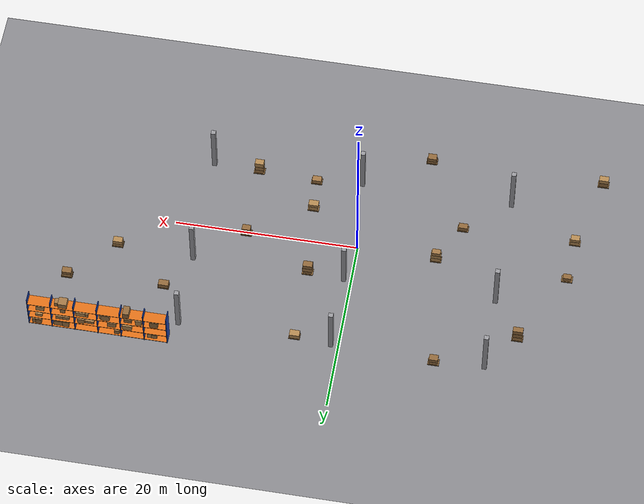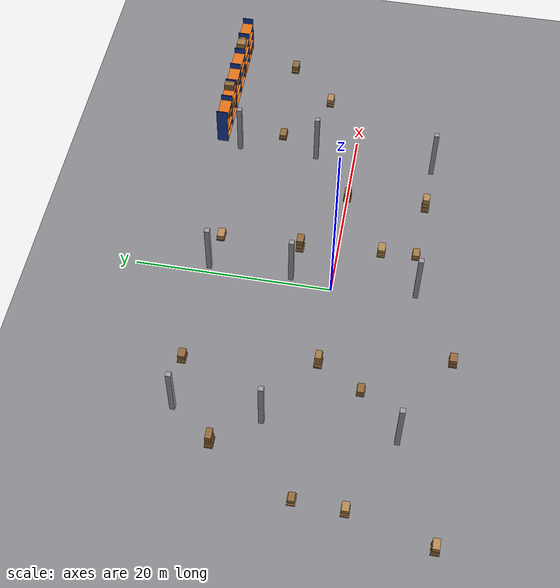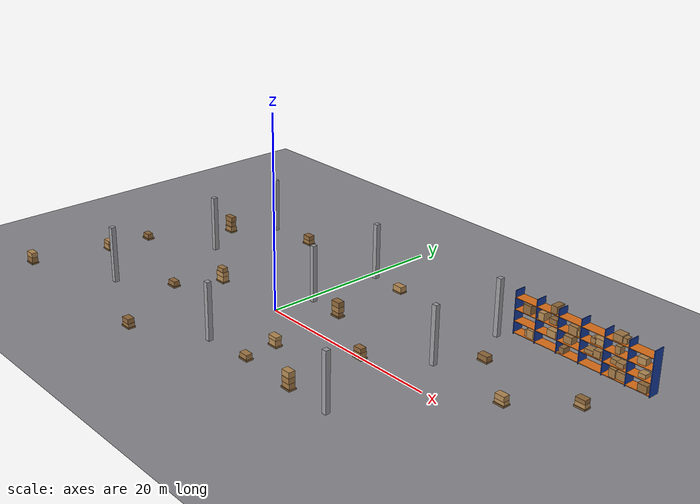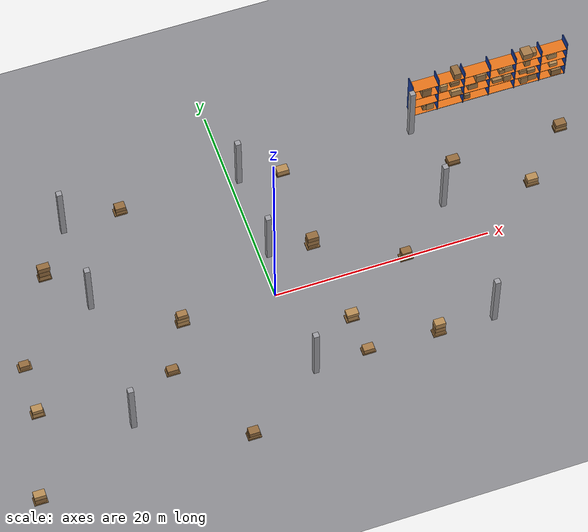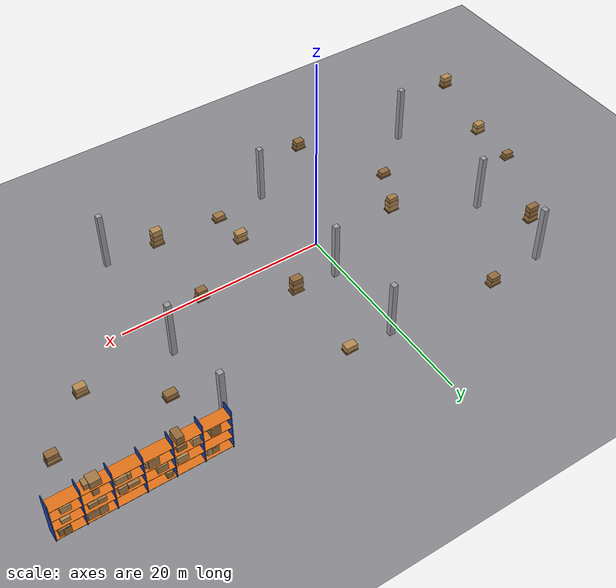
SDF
<sdf version="1.9">
 <world name="warehouse">
  <model name="ground_plane">
   <static>true</static>
   <link name="link">
    <collision name="collision">
     <geometry><plane><normal>0 0 1</normal><size>1 1</size></plane></geometry>
    </collision>
    <visual name="visual">
     <geometry><plane><normal>0 0 1</normal><size>200 100</size></plane></geometry>
     <material>
      <ambient>0.55 0.55 0.57 1</ambient>
      <diffuse>0.55 0.55 0.57 1</diffuse>
      <specular>0.1 0.1 0.1 1</specular>
     </material>
    </visual>
   </link>
  </model>
  <model name="rack31">
   <static>true</static>
   <link name="link">
    <collision name="up0_c">
     <pose>18.000 14.700 2.250 0 0 0</pose>
     <geometry><box><size>0.080 1.200 4.500</size></box></geometry>
    </collision>
    <visual name="up0_v">
     <pose>18.000 14.700 2.250 0 0 0</pose>
     <geometry><box><size>0.080 1.200 4.500</size></box></geometry>
     <material>
      <ambient>0.1 0.25 0.65 1</ambient>
      <diffuse>0.1 0.25 0.65 1</diffuse>
      <specular>0.1 0.1 0.1 1</specular>
     </material>
    </visual>
    <collision name="up1_c">
     <pose>20.500 14.700 2.250 0 0 0</pose>
     <geometry><box><size>0.080 1.200 4.500</size></box></geometry>
    </collision>
    <visual name="up1_v">
     <pose>20.500 14.700 2.250 0 0 0</pose>
     <geometry><box><size>0.080 1.200 4.500</size></box></geometry>
     <material>
      <ambient>0.1 0.25 0.65 1</ambient>
      <diffuse>0.1 0.25 0.65 1</diffuse>
      <specular>0.1 0.1 0.1 1</specular>
     </material>
    </visual>
    <collision name="up2_c">
     <pose>23.000 14.700 2.250 0 0 0</pose>
     <geometry><box><size>0.080 1.200 4.500</size></box></geometry>
    </collision>
    <visual name="up2_v">
     <pose>23.000 14.700 2.250 0 0 0</pose>
     <geometry><box><size>0.080 1.200 4.500</size></box></geometry>
     <material>
      <ambient>0.1 0.25 0.65 1</ambient>
      <diffuse>0.1 0.25 0.65 1</diffuse>
      <specular>0.1 0.1 0.1 1</specular>
     </material>
    </visual>
    <collision name="up3_c">
     <pose>25.500 14.700 2.250 0 0 0</pose>
     <geometry><box><size>0.080 1.200 4.500</size></box></geometry>
    </collision>
    <visual name="up3_v">
     <pose>25.500 14.700 2.250 0 0 0</pose>
     <geometry><box><size>0.080 1.200 4.500</size></box></geometry>
     <material>
      <ambient>0.1 0.25 0.65 1</ambient>
      <diffuse>0.1 0.25 0.65 1</diffuse>
      <specular>0.1 0.1 0.1 1</specular>
     </material>
    </visual>
    <collision name="up4_c">
     <pose>28.000 14.700 2.250 0 0 0</pose>
     <geometry><box><size>0.080 1.200 4.500</size></box></geometry>
    </collision>
    <visual name="up4_v">
     <pose>28.000 14.700 2.250 0 0 0</pose>
     <geometry><box><size>0.080 1.200 4.500</size></box></geometry>
     <material>
      <ambient>0.1 0.25 0.65 1</ambient>
      <diffuse>0.1 0.25 0.65 1</diffuse>
      <specular>0.1 0.1 0.1 1</specular>
     </material>
    </visual>
    <collision name="up5_c">
     <pose>30.500 14.700 2.250 0 0 0</pose>
     <geometry><box><size>0.080 1.200 4.500</size></box></geometry>
    </collision>
    <visual name="up5_v">
     <pose>30.500 14.700 2.250 0 0 0</pose>
     <geometry><box><size>0.080 1.200 4.500</size></box></geometry>
     <material>
      <ambient>0.1 0.25 0.65 1</ambient>
      <diffuse>0.1 0.25 0.65 1</diffuse>
      <specular>0.1 0.1 0.1 1</specular>
     </material>
    </visual>
    <collision name="up6_c">
     <pose>33.000 14.700 2.250 0 0 0</pose>
     <geometry><box><size>0.080 1.200 4.500</size></box></geometry>
    </collision>
    <visual name="up6_v">
     <pose>33.000 14.700 2.250 0 0 0</pose>
     <geometry><box><size>0.080 1.200 4.500</size></box></geometry>
     <material>
      <ambient>0.1 0.25 0.65 1</ambient>
      <diffuse>0.1 0.25 0.65 1</diffuse>
      <specular>0.1 0.1 0.1 1</specular>
     </material>
    </visual>
    <collision name="sh0_c">
     <pose>25.500 14.700 0.150 0 0 0</pose>
     <geometry><box><size>15.000 1.200 0.050</size></box></geometry>
    </collision>
    <visual name="sh0_v">
     <pose>25.500 14.700 0.150 0 0 0</pose>
     <geometry><box><size>15.000 1.200 0.050</size></box></geometry>
     <material>
      <ambient>0.9 0.45 0.1 1</ambient>
      <diffuse>0.9 0.45 0.1 1</diffuse>
      <specular>0.1 0.1 0.1 1</specular>
     </material>
    </visual>
    <collision name="sh1_c">
     <pose>25.500 14.700 1.350 0 0 0</pose>
     <geometry><box><size>15.000 1.200 0.050</size></box></geometry>
    </collision>
    <visual name="sh1_v">
     <pose>25.500 14.700 1.350 0 0 0</pose>
     <geometry><box><size>15.000 1.200 0.050</size></box></geometry>
     <material>
      <ambient>0.9 0.45 0.1 1</ambient>
      <diffuse>0.9 0.45 0.1 1</diffuse>
      <specular>0.1 0.1 0.1 1</specular>
     </material>
    </visual>
    <collision name="sh2_c">
     <pose>25.500 14.700 2.550 0 0 0</pose>
     <geometry><box><size>15.000 1.200 0.050</size></box></geometry>
    </collision>
    <visual name="sh2_v">
     <pose>25.500 14.700 2.550 0 0 0</pose>
     <geometry><box><size>15.000 1.200 0.050</size></box></geometry>
     <material>
      <ambient>0.9 0.45 0.1 1</ambient>
      <diffuse>0.9 0.45 0.1 1</diffuse>
      <specular>0.1 0.1 0.1 1</specular>
     </material>
    </visual>
    <collision name="sh3_c">
     <pose>25.500 14.700 3.750 0 0 0</pose>
     <geometry><box><size>15.000 1.200 0.050</size></box></geometry>
    </collision>
    <visual name="sh3_v">
     <pose>25.500 14.700 3.750 0 0 0</pose>
     <geometry><box><size>15.000 1.200 0.050</size></box></geometry>
     <material>
      <ambient>0.9 0.45 0.1 1</ambient>
      <diffuse>0.9 0.45 0.1 1</diffuse>
      <specular>0.1 0.1 0.1 1</specular>
     </material>
    </visual>
    <collision name="c0_c">
     <pose>19.825 14.655 0.602 0 0 0</pose>
     <geometry><box><size>0.725 0.772 0.853</size></box></geometry>
    </collision>
    <visual name="c0_v">
     <pose>19.825 14.655 0.602 0 0 0</pose>
     <geometry><box><size>0.725 0.772 0.853</size></box></geometry>
     <material>
      <ambient>0.72 0.55 0.33 1</ambient>
      <diffuse>0.72 0.55 0.33 1</diffuse>
      <specular>0.1 0.1 0.1 1</specular>
     </material>
    </visual>
    <collision name="c1_c">
     <pose>19.457 14.705 0.495 0 0 0</pose>
     <geometry><box><size>0.598 0.715 0.640</size></box></geometry>
    </collision>
    <visual name="c1_v">
     <pose>19.457 14.705 0.495 0 0 0</pose>
     <geometry><box><size>0.598 0.715 0.640</size></box></geometry>
     <material>
      <ambient>0.65 0.48 0.28 1</ambient>
      <diffuse>0.65 0.48 0.28 1</diffuse>
      <specular>0.1 0.1 0.1 1</specular>
     </material>
    </visual>
    <collision name="c2_c">
     <pose>19.378 14.694 3.024 0 0 0</pose>
     <geometry><box><size>0.868 1.087 0.899</size></box></geometry>
    </collision>
    <visual name="c2_v">
     <pose>19.378 14.694 3.024 0 0 0</pose>
     <geometry><box><size>0.868 1.087 0.899</size></box></geometry>
     <material>
      <ambient>0.58 0.42 0.24 1</ambient>
      <diffuse>0.58 0.42 0.24 1</diffuse>
      <specular>0.1 0.1 0.1 1</specular>
     </material>
    </visual>
    <collision name="c3_c">
     <pose>22.332 14.729 1.635 0 0 0</pose>
     <geometry><box><size>0.843 0.869 0.519</size></box></geometry>
    </collision>
    <visual name="c3_v">
     <pose>22.332 14.729 1.635 0 0 0</pose>
     <geometry><box><size>0.843 0.869 0.519</size></box></geometry>
     <material>
      <ambient>0.72 0.55 0.33 1</ambient>
      <diffuse>0.72 0.55 0.33 1</diffuse>
      <specular>0.1 0.1 0.1 1</specular>
     </material>
    </visual>
    <collision name="c4_c">
     <pose>22.305 14.676 1.718 0 0 0</pose>
     <geometry><box><size>0.984 1.085 0.686</size></box></geometry>
    </collision>
    <visual name="c4_v">
     <pose>22.305 14.676 1.718 0 0 0</pose>
     <geometry><box><size>0.984 1.085 0.686</size></box></geometry>
     <material>
      <ambient>0.72 0.55 0.33 1</ambient>
      <diffuse>0.72 0.55 0.33 1</diffuse>
      <specular>0.1 0.1 0.1 1</specular>
     </material>
    </visual>
    <collision name="c5_c">
     <pose>22.212 14.713 2.831 0 0 0</pose>
     <geometry><box><size>0.840 0.690 0.511</size></box></geometry>
    </collision>
    <visual name="c5_v">
     <pose>22.212 14.713 2.831 0 0 0</pose>
     <geometry><box><size>0.840 0.690 0.511</size></box></geometry>
     <material>
      <ambient>0.58 0.42 0.24 1</ambient>
      <diffuse>0.58 0.42 0.24 1</diffuse>
      <specular>0.1 0.1 0.1 1</specular>
     </material>
    </visual>
    <collision name="c6_c">
     <pose>21.035 14.676 2.964 0 0 0</pose>
     <geometry><box><size>0.652 1.081 0.778</size></box></geometry>
    </collision>
    <visual name="c6_v">
     <pose>21.035 14.676 2.964 0 0 0</pose>
     <geometry><box><size>0.652 1.081 0.778</size></box></geometry>
     <material>
      <ambient>0.72 0.55 0.33 1</ambient>
      <diffuse>0.72 0.55 0.33 1</diffuse>
      <specular>0.1 0.1 0.1 1</specular>
     </material>
    </visual>
    <collision name="c7_c">
     <pose>22.346 14.735 4.152 0 0 0</pose>
     <geometry><box><size>0.676 1.062 0.753</size></box></geometry>
    </collision>
    <visual name="c7_v">
     <pose>22.346 14.735 4.152 0 0 0</pose>
     <geometry><box><size>0.676 1.062 0.753</size></box></geometry>
     <material>
      <ambient>0.58 0.42 0.24 1</ambient>
      <diffuse>0.58 0.42 0.24 1</diffuse>
      <specular>0.1 0.1 0.1 1</specular>
     </material>
    </visual>
    <collision name="c8_c">
     <pose>23.482 14.710 0.460 0 0 0</pose>
     <geometry><box><size>0.530 0.891 0.570</size></box></geometry>
    </collision>
    <visual name="c8_v">
     <pose>23.482 14.710 0.460 0 0 0</pose>
     <geometry><box><size>0.530 0.891 0.570</size></box></geometry>
     <material>
      <ambient>0.58 0.42 0.24 1</ambient>
      <diffuse>0.58 0.42 0.24 1</diffuse>
      <specular>0.1 0.1 0.1 1</specular>
     </material>
    </visual>
    <collision name="c9_c">
     <pose>23.991 14.744 1.728 0 0 0</pose>
     <geometry><box><size>0.909 0.817 0.706</size></box></geometry>
    </collision>
    <visual name="c9_v">
     <pose>23.991 14.744 1.728 0 0 0</pose>
     <geometry><box><size>0.909 0.817 0.706</size></box></geometry>
     <material>
      <ambient>0.65 0.48 0.28 1</ambient>
      <diffuse>0.65 0.48 0.28 1</diffuse>
      <specular>0.1 0.1 0.1 1</specular>
     </material>
    </visual>
    <collision name="c10_c">
     <pose>24.620 14.655 2.996 0 0 0</pose>
     <geometry><box><size>0.900 1.082 0.842</size></box></geometry>
    </collision>
    <visual name="c10_v">
     <pose>24.620 14.655 2.996 0 0 0</pose>
     <geometry><box><size>0.900 1.082 0.842</size></box></geometry>
     <material>
      <ambient>0.65 0.48 0.28 1</ambient>
      <diffuse>0.65 0.48 0.28 1</diffuse>
      <specular>0.1 0.1 0.1 1</specular>
     </material>
    </visual>
    <collision name="c11_c">
     <pose>24.902 14.666 2.884 0 0 0</pose>
     <geometry><box><size>0.732 0.781 0.619</size></box></geometry>
    </collision>
    <visual name="c11_v">
     <pose>24.902 14.666 2.884 0 0 0</pose>
     <geometry><box><size>0.732 0.781 0.619</size></box></geometry>
     <material>
      <ambient>0.72 0.55 0.33 1</ambient>
      <diffuse>0.72 0.55 0.33 1</diffuse>
      <specular>0.1 0.1 0.1 1</specular>
     </material>
    </visual>
    <collision name="c12_c">
     <pose>27.309 14.702 1.725 0 0 0</pose>
     <geometry><box><size>0.725 1.022 0.700</size></box></geometry>
    </collision>
    <visual name="c12_v">
     <pose>27.309 14.702 1.725 0 0 0</pose>
     <geometry><box><size>0.725 1.022 0.700</size></box></geometry>
     <material>
      <ambient>0.65 0.48 0.28 1</ambient>
      <diffuse>0.65 0.48 0.28 1</diffuse>
      <specular>0.1 0.1 0.1 1</specular>
     </material>
    </visual>
    <collision name="c13_c">
     <pose>26.391 14.690 1.576 0 0 0</pose>
     <geometry><box><size>0.947 0.845 0.402</size></box></geometry>
    </collision>
    <visual name="c13_v">
     <pose>26.391 14.690 1.576 0 0 0</pose>
     <geometry><box><size>0.947 0.845 0.402</size></box></geometry>
     <material>
      <ambient>0.65 0.48 0.28 1</ambient>
      <diffuse>0.65 0.48 0.28 1</diffuse>
      <specular>0.1 0.1 0.1 1</specular>
     </material>
    </visual>
    <collision name="c14_c">
     <pose>26.744 14.690 2.833 0 0 0</pose>
     <geometry><box><size>0.511 0.857 0.516</size></box></geometry>
    </collision>
    <visual name="c14_v">
     <pose>26.744 14.690 2.833 0 0 0</pose>
     <geometry><box><size>0.511 0.857 0.516</size></box></geometry>
     <material>
      <ambient>0.65 0.48 0.28 1</ambient>
      <diffuse>0.65 0.48 0.28 1</diffuse>
      <specular>0.1 0.1 0.1 1</specular>
     </material>
    </visual>
    <collision name="c15_c">
     <pose>27.297 14.719 2.882 0 0 0</pose>
     <geometry><box><size>1.005 0.804 0.614</size></box></geometry>
    </collision>
    <visual name="c15_v">
     <pose>27.297 14.719 2.882 0 0 0</pose>
     <geometry><box><size>1.005 0.804 0.614</size></box></geometry>
     <material>
      <ambient>0.72 0.55 0.33 1</ambient>
      <diffuse>0.72 0.55 0.33 1</diffuse>
      <specular>0.1 0.1 0.1 1</specular>
     </material>
    </visual>
    <collision name="c16_c">
     <pose>29.045 14.686 0.596 0 0 0</pose>
     <geometry><box><size>0.688 0.986 0.843</size></box></geometry>
    </collision>
    <visual name="c16_v">
     <pose>29.045 14.686 0.596 0 0 0</pose>
     <geometry><box><size>0.688 0.986 0.843</size></box></geometry>
     <material>
      <ambient>0.65 0.48 0.28 1</ambient>
      <diffuse>0.65 0.48 0.28 1</diffuse>
      <specular>0.1 0.1 0.1 1</specular>
     </material>
    </visual>
    <collision name="c17_c">
     <pose>29.847 14.737 0.554 0 0 0</pose>
     <geometry><box><size>0.970 0.792 0.758</size></box></geometry>
    </collision>
    <visual name="c17_v">
     <pose>29.847 14.737 0.554 0 0 0</pose>
     <geometry><box><size>0.970 0.792 0.758</size></box></geometry>
     <material>
      <ambient>0.65 0.48 0.28 1</ambient>
      <diffuse>0.65 0.48 0.28 1</diffuse>
      <specular>0.1 0.1 0.1 1</specular>
     </material>
    </visual>
    <collision name="c18_c">
     <pose>28.958 14.746 1.609 0 0 0</pose>
     <geometry><box><size>0.700 0.640 0.469</size></box></geometry>
    </collision>
    <visual name="c18_v">
     <pose>28.958 14.746 1.609 0 0 0</pose>
     <geometry><box><size>0.700 0.640 0.469</size></box></geometry>
     <material>
      <ambient>0.65 0.48 0.28 1</ambient>
      <diffuse>0.65 0.48 0.28 1</diffuse>
      <specular>0.1 0.1 0.1 1</specular>
     </material>
    </visual>
    <collision name="c19_c">
     <pose>29.686 14.668 1.608 0 0 0</pose>
     <geometry><box><size>0.766 0.804 0.466</size></box></geometry>
    </collision>
    <visual name="c19_v">
     <pose>29.686 14.668 1.608 0 0 0</pose>
     <geometry><box><size>0.766 0.804 0.466</size></box></geometry>
     <material>
      <ambient>0.65 0.48 0.28 1</ambient>
      <diffuse>0.65 0.48 0.28 1</diffuse>
      <specular>0.1 0.1 0.1 1</specular>
     </material>
    </visual>
    <collision name="c20_c">
     <pose>29.273 14.671 2.940 0 0 0</pose>
     <geometry><box><size>0.519 0.670 0.730</size></box></geometry>
    </collision>
    <visual name="c20_v">
     <pose>29.273 14.671 2.940 0 0 0</pose>
     <geometry><box><size>0.519 0.670 0.730</size></box></geometry>
     <material>
      <ambient>0.65 0.48 0.28 1</ambient>
      <diffuse>0.65 0.48 0.28 1</diffuse>
      <specular>0.1 0.1 0.1 1</specular>
     </material>
    </visual>
    <collision name="c21_c">
     <pose>29.203 14.708 4.115 0 0 0</pose>
     <geometry><box><size>0.939 0.946 0.679</size></box></geometry>
    </collision>
    <visual name="c21_v">
     <pose>29.203 14.708 4.115 0 0 0</pose>
     <geometry><box><size>0.939 0.946 0.679</size></box></geometry>
     <material>
      <ambient>0.65 0.48 0.28 1</ambient>
      <diffuse>0.65 0.48 0.28 1</diffuse>
      <specular>0.1 0.1 0.1 1</specular>
     </material>
    </visual>
    <collision name="c22_c">
     <pose>29.659 14.674 4.050 0 0 0</pose>
     <geometry><box><size>0.839 0.653 0.550</size></box></geometry>
    </collision>
    <visual name="c22_v">
     <pose>29.659 14.674 4.050 0 0 0</pose>
     <geometry><box><size>0.839 0.653 0.550</size></box></geometry>
     <material>
      <ambient>0.65 0.48 0.28 1</ambient>
      <diffuse>0.65 0.48 0.28 1</diffuse>
      <specular>0.1 0.1 0.1 1</specular>
     </material>
    </visual>
    <collision name="c23_c">
     <pose>32.190 14.673 0.533 0 0 0</pose>
     <geometry><box><size>0.952 1.045 0.717</size></box></geometry>
    </collision>
    <visual name="c23_v">
     <pose>32.190 14.673 0.533 0 0 0</pose>
     <geometry><box><size>0.952 1.045 0.717</size></box></geometry>
     <material>
      <ambient>0.58 0.42 0.24 1</ambient>
      <diffuse>0.58 0.42 0.24 1</diffuse>
      <specular>0.1 0.1 0.1 1</specular>
     </material>
    </visual>
    <collision name="c24_c">
     <pose>31.988 14.719 0.522 0 0 0</pose>
     <geometry><box><size>0.624 1.037 0.694</size></box></geometry>
    </collision>
    <visual name="c24_v">
     <pose>31.988 14.719 0.522 0 0 0</pose>
     <geometry><box><size>0.624 1.037 0.694</size></box></geometry>
     <material>
      <ambient>0.58 0.42 0.24 1</ambient>
      <diffuse>0.58 0.42 0.24 1</diffuse>
      <specular>0.1 0.1 0.1 1</specular>
     </material>
    </visual>
    <collision name="c25_c">
     <pose>31.910 14.698 1.580 0 0 0</pose>
     <geometry><box><size>0.730 0.779 0.410</size></box></geometry>
    </collision>
    <visual name="c25_v">
     <pose>31.910 14.698 1.580 0 0 0</pose>
     <geometry><box><size>0.730 0.779 0.410</size></box></geometry>
     <material>
      <ambient>0.72 0.55 0.33 1</ambient>
      <diffuse>0.72 0.55 0.33 1</diffuse>
      <specular>0.1 0.1 0.1 1</specular>
     </material>
    </visual>
    <collision name="c26_c">
     <pose>31.705 14.725 2.902 0 0 0</pose>
     <geometry><box><size>0.866 0.742 0.653</size></box></geometry>
    </collision>
    <visual name="c26_v">
     <pose>31.705 14.725 2.902 0 0 0</pose>
     <geometry><box><size>0.866 0.742 0.653</size></box></geometry>
     <material>
      <ambient>0.72 0.55 0.33 1</ambient>
      <diffuse>0.72 0.55 0.33 1</diffuse>
      <specular>0.1 0.1 0.1 1</specular>
     </material>
    </visual>
   </link>
  </model>
  <model name="pallet0">
   <static>true</static>
   <link name="link">
    <collision name="pallet_c">
     <pose>12.207 0.020 0.075 0 0 0</pose>
     <geometry><box><size>1.200 0.800 0.150</size></box></geometry>
    </collision>
    <visual name="pallet_v">
     <pose>12.207 0.020 0.075 0 0 0</pose>
     <geometry><box><size>1.200 0.800 0.150</size></box></geometry>
     <material>
      <ambient>0.55 0.4 0.22 1</ambient>
      <diffuse>0.55 0.4 0.22 1</diffuse>
      <specular>0.1 0.1 0.1 1</specular>
     </material>
    </visual>
    <collision name="b0_c">
     <pose>12.207 0.020 0.431 0 0 0</pose>
     <geometry><box><size>0.926 0.740 0.562</size></box></geometry>
    </collision>
    <visual name="b0_v">
     <pose>12.207 0.020 0.431 0 0 0</pose>
     <geometry><box><size>0.926 0.740 0.562</size></box></geometry>
     <material>
      <ambient>0.65 0.48 0.28 1</ambient>
      <diffuse>0.65 0.48 0.28 1</diffuse>
      <specular>0.1 0.1 0.1 1</specular>
     </material>
    </visual>
    <collision name="b1_c">
     <pose>12.207 0.020 0.927 0 0 0</pose>
     <geometry><box><size>0.929 0.675 0.429</size></box></geometry>
    </collision>
    <visual name="b1_v">
     <pose>12.207 0.020 0.927 0 0 0</pose>
     <geometry><box><size>0.929 0.675 0.429</size></box></geometry>
     <material>
      <ambient>0.58 0.42 0.24 1</ambient>
      <diffuse>0.58 0.42 0.24 1</diffuse>
      <specular>0.1 0.1 0.1 1</specular>
     </material>
    </visual>
   </link>
  </model>
  <model name="pallet1">
   <static>true</static>
   <link name="link">
    <collision name="pallet_c">
     <pose>-22.923 0.165 0.075 0 0 0</pose>
     <geometry><box><size>1.200 0.800 0.150</size></box></geometry>
    </collision>
    <visual name="pallet_v">
     <pose>-22.923 0.165 0.075 0 0 0</pose>
     <geometry><box><size>1.200 0.800 0.150</size></box></geometry>
     <material>
      <ambient>0.55 0.4 0.22 1</ambient>
      <diffuse>0.55 0.4 0.22 1</diffuse>
      <specular>0.1 0.1 0.1 1</specular>
     </material>
    </visual>
    <collision name="b0_c">
     <pose>-22.923 0.165 0.402 0 0 0</pose>
     <geometry><box><size>0.900 0.610 0.504</size></box></geometry>
    </collision>
    <visual name="b0_v">
     <pose>-22.923 0.165 0.402 0 0 0</pose>
     <geometry><box><size>0.900 0.610 0.504</size></box></geometry>
     <material>
      <ambient>0.58 0.42 0.24 1</ambient>
      <diffuse>0.58 0.42 0.24 1</diffuse>
      <specular>0.1 0.1 0.1 1</specular>
     </material>
    </visual>
   </link>
  </model>
  <model name="pallet2">
   <static>true</static>
   <link name="link">
    <collision name="pallet_c">
     <pose>-8.615 -0.023 0.075 0 0 0</pose>
     <geometry><box><size>1.200 0.800 0.150</size></box></geometry>
    </collision>
    <visual name="pallet_v">
     <pose>-8.615 -0.023 0.075 0 0 0</pose>
     <geometry><box><size>1.200 0.800 0.150</size></box></geometry>
     <material>
      <ambient>0.55 0.4 0.22 1</ambient>
      <diffuse>0.55 0.4 0.22 1</diffuse>
      <specular>0.1 0.1 0.1 1</specular>
     </material>
    </visual>
    <collision name="b0_c">
     <pose>-8.615 -0.023 0.433 0 0 0</pose>
     <geometry><box><size>1.030 0.680 0.567</size></box></geometry>
    </collision>
    <visual name="b0_v">
     <pose>-8.615 -0.023 0.433 0 0 0</pose>
     <geometry><box><size>1.030 0.680 0.567</size></box></geometry>
     <material>
      <ambient>0.72 0.55 0.33 1</ambient>
      <diffuse>0.72 0.55 0.33 1</diffuse>
      <specular>0.1 0.1 0.1 1</specular>
     </material>
    </visual>
    <collision name="b1_c">
     <pose>-8.615 -0.023 0.948 0 0 0</pose>
     <geometry><box><size>1.083 0.701 0.464</size></box></geometry>
    </collision>
    <visual name="b1_v">
     <pose>-8.615 -0.023 0.948 0 0 0</pose>
     <geometry><box><size>1.083 0.701 0.464</size></box></geometry>
     <material>
      <ambient>0.72 0.55 0.33 1</ambient>
      <diffuse>0.72 0.55 0.33 1</diffuse>
      <specular>0.1 0.1 0.1 1</specular>
     </material>
    </visual>
    <collision name="b2_c">
     <pose>-8.615 -0.023 1.400 0 0 0</pose>
     <geometry><box><size>0.916 0.610 0.439</size></box></geometry>
    </collision>
    <visual name="b2_v">
     <pose>-8.615 -0.023 1.400 0 0 0</pose>
     <geometry><box><size>0.916 0.610 0.439</size></box></geometry>
     <material>
      <ambient>0.65 0.48 0.28 1</ambient>
      <diffuse>0.65 0.48 0.28 1</diffuse>
      <specular>0.1 0.1 0.1 1</specular>
     </material>
    </visual>
   </link>
  </model>
  <model name="pallet3">
   <static>true</static>
   <link name="link">
    <collision name="pallet_c">
     <pose>4.776 3.894 0.075 0 0 0</pose>
     <geometry><box><size>1.200 0.800 0.150</size></box></geometry>
    </collision>
    <visual name="pallet_v">
     <pose>4.776 3.894 0.075 0 0 0</pose>
     <geometry><box><size>1.200 0.800 0.150</size></box></geometry>
     <material>
      <ambient>0.55 0.4 0.22 1</ambient>
      <diffuse>0.55 0.4 0.22 1</diffuse>
      <specular>0.1 0.1 0.1 1</specular>
     </material>
    </visual>
    <collision name="b0_c">
     <pose>4.776 3.894 0.353 0 0 0</pose>
     <geometry><box><size>0.931 0.618 0.406</size></box></geometry>
    </collision>
    <visual name="b0_v">
     <pose>4.776 3.894 0.353 0 0 0</pose>
     <geometry><box><size>0.931 0.618 0.406</size></box></geometry>
     <material>
      <ambient>0.58 0.42 0.24 1</ambient>
      <diffuse>0.58 0.42 0.24 1</diffuse>
      <specular>0.1 0.1 0.1 1</specular>
     </material>
    </visual>
    <collision name="b1_c">
     <pose>4.776 3.894 0.838 0 0 0</pose>
     <geometry><box><size>1.082 0.674 0.564</size></box></geometry>
    </collision>
    <visual name="b1_v">
     <pose>4.776 3.894 0.838 0 0 0</pose>
     <geometry><box><size>1.082 0.674 0.564</size></box></geometry>
     <material>
      <ambient>0.65 0.48 0.28 1</ambient>
      <diffuse>0.65 0.48 0.28 1</diffuse>
      <specular>0.1 0.1 0.1 1</specular>
     </material>
    </visual>
    <collision name="b2_c">
     <pose>4.776 3.894 1.385 0 0 0</pose>
     <geometry><box><size>1.025 0.702 0.530</size></box></geometry>
    </collision>
    <visual name="b2_v">
     <pose>4.776 3.894 1.385 0 0 0</pose>
     <geometry><box><size>1.025 0.702 0.530</size></box></geometry>
     <material>
      <ambient>0.58 0.42 0.24 1</ambient>
      <diffuse>0.58 0.42 0.24 1</diffuse>
      <specular>0.1 0.1 0.1 1</specular>
     </material>
    </visual>
   </link>
  </model>
  <model name="pallet4">
   <static>true</static>
   <link name="link">
    <collision name="pallet_c">
     <pose>25.657 3.797 0.075 0 0 0</pose>
     <geometry><box><size>1.200 0.800 0.150</size></box></geometry>
    </collision>
    <visual name="pallet_v">
     <pose>25.657 3.797 0.075 0 0 0</pose>
     <geometry><box><size>1.200 0.800 0.150</size></box></geometry>
     <material>
      <ambient>0.55 0.4 0.22 1</ambient>
      <diffuse>0.55 0.4 0.22 1</diffuse>
      <specular>0.1 0.1 0.1 1</specular>
     </material>
    </visual>
    <collision name="b0_c">
     <pose>25.657 3.797 0.336 0 0 0</pose>
     <geometry><box><size>1.087 0.617 0.372</size></box></geometry>
    </collision>
    <visual name="b0_v">
     <pose>25.657 3.797 0.336 0 0 0</pose>
     <geometry><box><size>1.087 0.617 0.372</size></box></geometry>
     <material>
      <ambient>0.72 0.55 0.33 1</ambient>
      <diffuse>0.72 0.55 0.33 1</diffuse>
      <specular>0.1 0.1 0.1 1</specular>
     </material>
    </visual>
    <collision name="b1_c">
     <pose>25.657 3.797 0.764 0 0 0</pose>
     <geometry><box><size>1.015 0.687 0.484</size></box></geometry>
    </collision>
    <visual name="b1_v">
     <pose>25.657 3.797 0.764 0 0 0</pose>
     <geometry><box><size>1.015 0.687 0.484</size></box></geometry>
     <material>
      <ambient>0.72 0.55 0.33 1</ambient>
      <diffuse>0.72 0.55 0.33 1</diffuse>
      <specular>0.1 0.1 0.1 1</specular>
     </material>
    </visual>
   </link>
  </model>
  <model name="pallet5">
   <static>true</static>
   <link name="link">
    <collision name="pallet_c">
     <pose>5.544 -4.396 0.075 0 0 0</pose>
     <geometry><box><size>1.200 0.800 0.150</size></box></geometry>
    </collision>
    <visual name="pallet_v">
     <pose>5.544 -4.396 0.075 0 0 0</pose>
     <geometry><box><size>1.200 0.800 0.150</size></box></geometry>
     <material>
      <ambient>0.55 0.4 0.22 1</ambient>
      <diffuse>0.55 0.4 0.22 1</diffuse>
      <specular>0.1 0.1 0.1 1</specular>
     </material>
    </visual>
    <collision name="b0_c">
     <pose>5.544 -4.396 0.439 0 0 0</pose>
     <geometry><box><size>0.916 0.700 0.579</size></box></geometry>
    </collision>
    <visual name="b0_v">
     <pose>5.544 -4.396 0.439 0 0 0</pose>
     <geometry><box><size>0.916 0.700 0.579</size></box></geometry>
     <material>
      <ambient>0.72 0.55 0.33 1</ambient>
      <diffuse>0.72 0.55 0.33 1</diffuse>
      <specular>0.1 0.1 0.1 1</specular>
     </material>
    </visual>
    <collision name="b1_c">
     <pose>5.544 -4.396 0.908 0 0 0</pose>
     <geometry><box><size>1.074 0.707 0.358</size></box></geometry>
    </collision>
    <visual name="b1_v">
     <pose>5.544 -4.396 0.908 0 0 0</pose>
     <geometry><box><size>1.074 0.707 0.358</size></box></geometry>
     <material>
      <ambient>0.72 0.55 0.33 1</ambient>
      <diffuse>0.72 0.55 0.33 1</diffuse>
      <specular>0.1 0.1 0.1 1</specular>
     </material>
    </visual>
   </link>
  </model>
  <model name="pallet6">
   <static>true</static>
   <link name="link">
    <collision name="pallet_c">
     <pose>-10.946 -4.438 0.075 0 0 0</pose>
     <geometry><box><size>1.200 0.800 0.150</size></box></geometry>
    </collision>
    <visual name="pallet_v">
     <pose>-10.946 -4.438 0.075 0 0 0</pose>
     <geometry><box><size>1.200 0.800 0.150</size></box></geometry>
     <material>
      <ambient>0.55 0.4 0.22 1</ambient>
      <diffuse>0.55 0.4 0.22 1</diffuse>
      <specular>0.1 0.1 0.1 1</specular>
     </material>
    </visual>
    <collision name="b0_c">
     <pose>-10.946 -4.438 0.397 0 0 0</pose>
     <geometry><box><size>0.987 0.637 0.494</size></box></geometry>
    </collision>
    <visual name="b0_v">
     <pose>-10.946 -4.438 0.397 0 0 0</pose>
     <geometry><box><size>0.987 0.637 0.494</size></box></geometry>
     <material>
      <ambient>0.58 0.42 0.24 1</ambient>
      <diffuse>0.58 0.42 0.24 1</diffuse>
      <specular>0.1 0.1 0.1 1</specular>
     </material>
    </visual>
   </link>
  </model>
  <model name="pallet7">
   <static>true</static>
   <link name="link">
    <collision name="pallet_c">
     <pose>-23.164 -4.658 0.075 0 0 0</pose>
     <geometry><box><size>1.200 0.800 0.150</size></box></geometry>
    </collision>
    <visual name="pallet_v">
     <pose>-23.164 -4.658 0.075 0 0 0</pose>
     <geometry><box><size>1.200 0.800 0.150</size></box></geometry>
     <material>
      <ambient>0.55 0.4 0.22 1</ambient>
      <diffuse>0.55 0.4 0.22 1</diffuse>
      <specular>0.1 0.1 0.1 1</specular>
     </material>
    </visual>
    <collision name="b0_c">
     <pose>-23.164 -4.658 0.421 0 0 0</pose>
     <geometry><box><size>0.968 0.738 0.542</size></box></geometry>
    </collision>
    <visual name="b0_v">
     <pose>-23.164 -4.658 0.421 0 0 0</pose>
     <geometry><box><size>0.968 0.738 0.542</size></box></geometry>
     <material>
      <ambient>0.72 0.55 0.33 1</ambient>
      <diffuse>0.72 0.55 0.33 1</diffuse>
      <specular>0.1 0.1 0.1 1</specular>
     </material>
    </visual>
    <collision name="b1_c">
     <pose>-23.164 -4.658 0.880 0 0 0</pose>
     <geometry><box><size>0.948 0.673 0.376</size></box></geometry>
    </collision>
    <visual name="b1_v">
     <pose>-23.164 -4.658 0.880 0 0 0</pose>
     <geometry><box><size>0.948 0.673 0.376</size></box></geometry>
     <material>
      <ambient>0.72 0.55 0.33 1</ambient>
      <diffuse>0.72 0.55 0.33 1</diffuse>
      <specular>0.1 0.1 0.1 1</specular>
     </material>
    </visual>
   </link>
  </model>
  <model name="pallet8">
   <static>true</static>
   <link name="link">
    <collision name="pallet_c">
     <pose>-18.680 8.466 0.075 0 0 0</pose>
     <geometry><box><size>1.200 0.800 0.150</size></box></geometry>
    </collision>
    <visual name="pallet_v">
     <pose>-18.680 8.466 0.075 0 0 0</pose>
     <geometry><box><size>1.200 0.800 0.150</size></box></geometry>
     <material>
      <ambient>0.55 0.4 0.22 1</ambient>
      <diffuse>0.55 0.4 0.22 1</diffuse>
      <specular>0.1 0.1 0.1 1</specular>
     </material>
    </visual>
    <collision name="b0_c">
     <pose>-18.680 8.466 0.421 0 0 0</pose>
     <geometry><box><size>1.023 0.714 0.543</size></box></geometry>
    </collision>
    <visual name="b0_v">
     <pose>-18.680 8.466 0.421 0 0 0</pose>
     <geometry><box><size>1.023 0.714 0.543</size></box></geometry>
     <material>
      <ambient>0.65 0.48 0.28 1</ambient>
      <diffuse>0.65 0.48 0.28 1</diffuse>
      <specular>0.1 0.1 0.1 1</specular>
     </material>
    </visual>
    <collision name="b1_c">
     <pose>-18.680 8.466 0.975 0 0 0</pose>
     <geometry><box><size>0.976 0.608 0.564</size></box></geometry>
    </collision>
    <visual name="b1_v">
     <pose>-18.680 8.466 0.975 0 0 0</pose>
     <geometry><box><size>0.976 0.608 0.564</size></box></geometry>
     <material>
      <ambient>0.58 0.42 0.24 1</ambient>
      <diffuse>0.58 0.42 0.24 1</diffuse>
      <specular>0.1 0.1 0.1 1</specular>
     </material>
    </visual>
    <collision name="b2_c">
     <pose>-18.680 8.466 1.537 0 0 0</pose>
     <geometry><box><size>1.097 0.601 0.559</size></box></geometry>
    </collision>
    <visual name="b2_v">
     <pose>-18.680 8.466 1.537 0 0 0</pose>
     <geometry><box><size>1.097 0.601 0.559</size></box></geometry>
     <material>
      <ambient>0.58 0.42 0.24 1</ambient>
      <diffuse>0.58 0.42 0.24 1</diffuse>
      <specular>0.1 0.1 0.1 1</specular>
     </material>
    </visual>
   </link>
  </model>
  <model name="pallet9">
   <static>true</static>
   <link name="link">
    <collision name="pallet_c">
     <pose>19.769 8.227 0.075 0 0 0</pose>
     <geometry><box><size>1.200 0.800 0.150</size></box></geometry>
    </collision>
    <visual name="pallet_v">
     <pose>19.769 8.227 0.075 0 0 0</pose>
     <geometry><box><size>1.200 0.800 0.150</size></box></geometry>
     <material>
      <ambient>0.55 0.4 0.22 1</ambient>
      <diffuse>0.55 0.4 0.22 1</diffuse>
      <specular>0.1 0.1 0.1 1</specular>
     </material>
    </visual>
    <collision name="b0_c">
     <pose>19.769 8.227 0.412 0 0 0</pose>
     <geometry><box><size>1.092 0.709 0.525</size></box></geometry>
    </collision>
    <visual name="b0_v">
     <pose>19.769 8.227 0.412 0 0 0</pose>
     <geometry><box><size>1.092 0.709 0.525</size></box></geometry>
     <material>
      <ambient>0.58 0.42 0.24 1</ambient>
      <diffuse>0.58 0.42 0.24 1</diffuse>
      <specular>0.1 0.1 0.1 1</specular>
     </material>
    </visual>
   </link>
  </model>
  <model name="pallet10">
   <static>true</static>
   <link name="link">
    <collision name="pallet_c">
     <pose>30.294 8.561 0.075 0 0 0</pose>
     <geometry><box><size>1.200 0.800 0.150</size></box></geometry>
    </collision>
    <visual name="pallet_v">
     <pose>30.294 8.561 0.075 0 0 0</pose>
     <geometry><box><size>1.200 0.800 0.150</size></box></geometry>
     <material>
      <ambient>0.55 0.4 0.22 1</ambient>
      <diffuse>0.55 0.4 0.22 1</diffuse>
      <specular>0.1 0.1 0.1 1</specular>
     </material>
    </visual>
    <collision name="b0_c">
     <pose>30.294 8.561 0.366 0 0 0</pose>
     <geometry><box><size>1.089 0.666 0.433</size></box></geometry>
    </collision>
    <visual name="b0_v">
     <pose>30.294 8.561 0.366 0 0 0</pose>
     <geometry><box><size>1.089 0.666 0.433</size></box></geometry>
     <material>
      <ambient>0.72 0.55 0.33 1</ambient>
      <diffuse>0.72 0.55 0.33 1</diffuse>
      <specular>0.1 0.1 0.1 1</specular>
     </material>
    </visual>
    <collision name="b1_c">
     <pose>30.294 8.561 0.778 0 0 0</pose>
     <geometry><box><size>1.034 0.715 0.390</size></box></geometry>
    </collision>
    <visual name="b1_v">
     <pose>30.294 8.561 0.778 0 0 0</pose>
     <geometry><box><size>1.034 0.715 0.390</size></box></geometry>
     <material>
      <ambient>0.58 0.42 0.24 1</ambient>
      <diffuse>0.58 0.42 0.24 1</diffuse>
      <specular>0.1 0.1 0.1 1</specular>
     </material>
    </visual>
   </link>
  </model>
  <model name="pallet11">
   <static>true</static>
   <link name="link">
    <collision name="pallet_c">
     <pose>5.791 -7.942 0.075 0 0 0</pose>
     <geometry><box><size>1.200 0.800 0.150</size></box></geometry>
    </collision>
    <visual name="pallet_v">
     <pose>5.791 -7.942 0.075 0 0 0</pose>
     <geometry><box><size>1.200 0.800 0.150</size></box></geometry>
     <material>
      <ambient>0.55 0.4 0.22 1</ambient>
      <diffuse>0.55 0.4 0.22 1</diffuse>
      <specular>0.1 0.1 0.1 1</specular>
     </material>
    </visual>
    <collision name="b0_c">
     <pose>5.791 -7.942 0.387 0 0 0</pose>
     <geometry><box><size>0.990 0.682 0.475</size></box></geometry>
    </collision>
    <visual name="b0_v">
     <pose>5.791 -7.942 0.387 0 0 0</pose>
     <geometry><box><size>0.990 0.682 0.475</size></box></geometry>
     <material>
      <ambient>0.65 0.48 0.28 1</ambient>
      <diffuse>0.65 0.48 0.28 1</diffuse>
      <specular>0.1 0.1 0.1 1</specular>
     </material>
    </visual>
   </link>
  </model>
  <model name="pallet12">
   <static>true</static>
   <link name="link">
    <collision name="pallet_c">
     <pose>12.230 -8.255 0.075 0 0 0</pose>
     <geometry><box><size>1.200 0.800 0.150</size></box></geometry>
    </collision>
    <visual name="pallet_v">
     <pose>12.230 -8.255 0.075 0 0 0</pose>
     <geometry><box><size>1.200 0.800 0.150</size></box></geometry>
     <material>
      <ambient>0.55 0.4 0.22 1</ambient>
      <diffuse>0.55 0.4 0.22 1</diffuse>
      <specular>0.1 0.1 0.1 1</specular>
     </material>
    </visual>
    <collision name="b0_c">
     <pose>12.230 -8.255 0.414 0 0 0</pose>
     <geometry><box><size>0.975 0.634 0.529</size></box></geometry>
    </collision>
    <visual name="b0_v">
     <pose>12.230 -8.255 0.414 0 0 0</pose>
     <geometry><box><size>0.975 0.634 0.529</size></box></geometry>
     <material>
      <ambient>0.65 0.48 0.28 1</ambient>
      <diffuse>0.65 0.48 0.28 1</diffuse>
      <specular>0.1 0.1 0.1 1</specular>
     </material>
    </visual>
    <collision name="b1_c">
     <pose>12.230 -8.255 0.952 0 0 0</pose>
     <geometry><box><size>0.946 0.726 0.546</size></box></geometry>
    </collision>
    <visual name="b1_v">
     <pose>12.230 -8.255 0.952 0 0 0</pose>
     <geometry><box><size>0.946 0.726 0.546</size></box></geometry>
     <material>
      <ambient>0.65 0.48 0.28 1</ambient>
      <diffuse>0.65 0.48 0.28 1</diffuse>
      <specular>0.1 0.1 0.1 1</specular>
     </material>
    </visual>
    <collision name="b2_c">
     <pose>12.230 -8.255 1.524 0 0 0</pose>
     <geometry><box><size>0.950 0.677 0.598</size></box></geometry>
    </collision>
    <visual name="b2_v">
     <pose>12.230 -8.255 1.524 0 0 0</pose>
     <geometry><box><size>0.950 0.677 0.598</size></box></geometry>
     <material>
      <ambient>0.72 0.55 0.33 1</ambient>
      <diffuse>0.72 0.55 0.33 1</diffuse>
      <specular>0.1 0.1 0.1 1</specular>
     </material>
    </visual>
   </link>
  </model>
  <model name="pallet13">
   <static>true</static>
   <link name="link">
    <collision name="pallet_c">
     <pose>-10.309 12.905 0.075 0 0 0</pose>
     <geometry><box><size>1.200 0.800 0.150</size></box></geometry>
    </collision>
    <visual name="pallet_v">
     <pose>-10.309 12.905 0.075 0 0 0</pose>
     <geometry><box><size>1.200 0.800 0.150</size></box></geometry>
     <material>
      <ambient>0.55 0.4 0.22 1</ambient>
      <diffuse>0.55 0.4 0.22 1</diffuse>
      <specular>0.1 0.1 0.1 1</specular>
     </material>
    </visual>
    <collision name="b0_c">
     <pose>-10.309 12.905 0.356 0 0 0</pose>
     <geometry><box><size>0.931 0.685 0.411</size></box></geometry>
    </collision>
    <visual name="b0_v">
     <pose>-10.309 12.905 0.356 0 0 0</pose>
     <geometry><box><size>0.931 0.685 0.411</size></box></geometry>
     <material>
      <ambient>0.65 0.48 0.28 1</ambient>
      <diffuse>0.65 0.48 0.28 1</diffuse>
      <specular>0.1 0.1 0.1 1</specular>
     </material>
    </visual>
    <collision name="b1_c">
     <pose>-10.309 12.905 0.795 0 0 0</pose>
     <geometry><box><size>0.951 0.711 0.469</size></box></geometry>
    </collision>
    <visual name="b1_v">
     <pose>-10.309 12.905 0.795 0 0 0</pose>
     <geometry><box><size>0.951 0.711 0.469</size></box></geometry>
     <material>
      <ambient>0.58 0.42 0.24 1</ambient>
      <diffuse>0.58 0.42 0.24 1</diffuse>
      <specular>0.1 0.1 0.1 1</specular>
     </material>
    </visual>
   </link>
  </model>
  <model name="pallet14">
   <static>true</static>
   <link name="link">
    <collision name="pallet_c">
     <pose>4.775 12.168 0.075 0 0 0</pose>
     <geometry><box><size>1.200 0.800 0.150</size></box></geometry>
    </collision>
    <visual name="pallet_v">
     <pose>4.775 12.168 0.075 0 0 0</pose>
     <geometry><box><size>1.200 0.800 0.150</size></box></geometry>
     <material>
      <ambient>0.55 0.4 0.22 1</ambient>
      <diffuse>0.55 0.4 0.22 1</diffuse>
      <specular>0.1 0.1 0.1 1</specular>
     </material>
    </visual>
    <collision name="b0_c">
     <pose>4.775 12.168 0.438 0 0 0</pose>
     <geometry><box><size>1.087 0.726 0.577</size></box></geometry>
    </collision>
    <visual name="b0_v">
     <pose>4.775 12.168 0.438 0 0 0</pose>
     <geometry><box><size>1.087 0.726 0.577</size></box></geometry>
     <material>
      <ambient>0.72 0.55 0.33 1</ambient>
      <diffuse>0.72 0.55 0.33 1</diffuse>
      <specular>0.1 0.1 0.1 1</specular>
     </material>
    </visual>
   </link>
  </model>
  <model name="pallet15">
   <static>true</static>
   <link name="link">
    <collision name="pallet_c">
     <pose>-25.294 -12.756 0.075 0 0 0</pose>
     <geometry><box><size>1.200 0.800 0.150</size></box></geometry>
    </collision>
    <visual name="pallet_v">
     <pose>-25.294 -12.756 0.075 0 0 0</pose>
     <geometry><box><size>1.200 0.800 0.150</size></box></geometry>
     <material>
      <ambient>0.55 0.4 0.22 1</ambient>
      <diffuse>0.55 0.4 0.22 1</diffuse>
      <specular>0.1 0.1 0.1 1</specular>
     </material>
    </visual>
    <collision name="b0_c">
     <pose>-25.294 -12.756 0.447 0 0 0</pose>
     <geometry><box><size>0.994 0.672 0.594</size></box></geometry>
    </collision>
    <visual name="b0_v">
     <pose>-25.294 -12.756 0.447 0 0 0</pose>
     <geometry><box><size>0.994 0.672 0.594</size></box></geometry>
     <material>
      <ambient>0.58 0.42 0.24 1</ambient>
      <diffuse>0.58 0.42 0.24 1</diffuse>
      <specular>0.1 0.1 0.1 1</specular>
     </material>
    </visual>
    <collision name="b1_c">
     <pose>-25.294 -12.756 1.000 0 0 0</pose>
     <geometry><box><size>1.028 0.660 0.511</size></box></geometry>
    </collision>
    <visual name="b1_v">
     <pose>-25.294 -12.756 1.000 0 0 0</pose>
     <geometry><box><size>1.028 0.660 0.511</size></box></geometry>
     <material>
      <ambient>0.72 0.55 0.33 1</ambient>
      <diffuse>0.72 0.55 0.33 1</diffuse>
      <specular>0.1 0.1 0.1 1</specular>
     </material>
    </visual>
   </link>
  </model>
  <model name="pallet16">
   <static>true</static>
   <link name="link">
    <collision name="pallet_c">
     <pose>-6.299 -12.708 0.075 0 0 0</pose>
     <geometry><box><size>1.200 0.800 0.150</size></box></geometry>
    </collision>
    <visual name="pallet_v">
     <pose>-6.299 -12.708 0.075 0 0 0</pose>
     <geometry><box><size>1.200 0.800 0.150</size></box></geometry>
     <material>
      <ambient>0.55 0.4 0.22 1</ambient>
      <diffuse>0.55 0.4 0.22 1</diffuse>
      <specular>0.1 0.1 0.1 1</specular>
     </material>
    </visual>
    <collision name="b0_c">
     <pose>-6.299 -12.708 0.327 0 0 0</pose>
     <geometry><box><size>1.035 0.681 0.354</size></box></geometry>
    </collision>
    <visual name="b0_v">
     <pose>-6.299 -12.708 0.327 0 0 0</pose>
     <geometry><box><size>1.035 0.681 0.354</size></box></geometry>
     <material>
      <ambient>0.65 0.48 0.28 1</ambient>
      <diffuse>0.65 0.48 0.28 1</diffuse>
      <specular>0.1 0.1 0.1 1</specular>
     </material>
    </visual>
    <collision name="b1_c">
     <pose>-6.299 -12.708 0.741 0 0 0</pose>
     <geometry><box><size>0.942 0.726 0.475</size></box></geometry>
    </collision>
    <visual name="b1_v">
     <pose>-6.299 -12.708 0.741 0 0 0</pose>
     <geometry><box><size>0.942 0.726 0.475</size></box></geometry>
     <material>
      <ambient>0.58 0.42 0.24 1</ambient>
      <diffuse>0.58 0.42 0.24 1</diffuse>
      <specular>0.1 0.1 0.1 1</specular>
     </material>
    </visual>
   </link>
  </model>
  <model name="column0_0">
   <static>true</static>
   <link name="link">
    <collision name="col_c">
     <pose>-15.700 -8.400 3.000 0 0 0</pose>
     <geometry><box><size>0.500 0.500 6.000</size></box></geometry>
    </collision>
    <visual name="col_v">
     <pose>-15.700 -8.400 3.000 0 0 0</pose>
     <geometry><box><size>0.500 0.500 6.000</size></box></geometry>
     <material>
      <ambient>0.62 0.62 0.64 1</ambient>
      <diffuse>0.62 0.62 0.64 1</diffuse>
      <specular>0.1 0.1 0.1 1</specular>
     </material>
    </visual>
   </link>
  </model>
  <model name="column0_1">
   <static>true</static>
   <link name="link">
    <collision name="col_c">
     <pose>-15.700 4.200 3.000 0 0 0</pose>
     <geometry><box><size>0.500 0.500 6.000</size></box></geometry>
    </collision>
    <visual name="col_v">
     <pose>-15.700 4.200 3.000 0 0 0</pose>
     <geometry><box><size>0.500 0.500 6.000</size></box></geometry>
     <material>
      <ambient>0.62 0.62 0.64 1</ambient>
      <diffuse>0.62 0.62 0.64 1</diffuse>
      <specular>0.1 0.1 0.1 1</specular>
     </material>
    </visual>
   </link>
  </model>
  <model name="column0_2">
   <static>true</static>
   <link name="link">
    <collision name="col_c">
     <pose>-15.700 12.600 3.000 0 0 0</pose>
     <geometry><box><size>0.500 0.500 6.000</size></box></geometry>
    </collision>
    <visual name="col_v">
     <pose>-15.700 12.600 3.000 0 0 0</pose>
     <geometry><box><size>0.500 0.500 6.000</size></box></geometry>
     <material>
      <ambient>0.62 0.62 0.64 1</ambient>
      <diffuse>0.62 0.62 0.64 1</diffuse>
      <specular>0.1 0.1 0.1 1</specular>
     </material>
    </visual>
   </link>
  </model>
  <model name="column1_0">
   <static>true</static>
   <link name="link">
    <collision name="col_c">
     <pose>0.800 -8.400 3.000 0 0 0</pose>
     <geometry><box><size>0.500 0.500 6.000</size></box></geometry>
    </collision>
    <visual name="col_v">
     <pose>0.800 -8.400 3.000 0 0 0</pose>
     <geometry><box><size>0.500 0.500 6.000</size></box></geometry>
     <material>
      <ambient>0.62 0.62 0.64 1</ambient>
      <diffuse>0.62 0.62 0.64 1</diffuse>
      <specular>0.1 0.1 0.1 1</specular>
     </material>
    </visual>
   </link>
  </model>
  <model name="column1_1">
   <static>true</static>
   <link name="link">
    <collision name="col_c">
     <pose>0.800 4.200 3.000 0 0 0</pose>
     <geometry><box><size>0.500 0.500 6.000</size></box></geometry>
    </collision>
    <visual name="col_v">
     <pose>0.800 4.200 3.000 0 0 0</pose>
     <geometry><box><size>0.500 0.500 6.000</size></box></geometry>
     <material>
      <ambient>0.62 0.62 0.64 1</ambient>
      <diffuse>0.62 0.62 0.64 1</diffuse>
      <specular>0.1 0.1 0.1 1</specular>
     </material>
    </visual>
   </link>
  </model>
  <model name="column1_2">
   <static>true</static>
   <link name="link">
    <collision name="col_c">
     <pose>0.800 12.600 3.000 0 0 0</pose>
     <geometry><box><size>0.500 0.500 6.000</size></box></geometry>
    </collision>
    <visual name="col_v">
     <pose>0.800 12.600 3.000 0 0 0</pose>
     <geometry><box><size>0.500 0.500 6.000</size></box></geometry>
     <material>
      <ambient>0.62 0.62 0.64 1</ambient>
      <diffuse>0.62 0.62 0.64 1</diffuse>
      <specular>0.1 0.1 0.1 1</specular>
     </material>
    </visual>
   </link>
  </model>
  <model name="column2_0">
   <static>true</static>
   <link name="link">
    <collision name="col_c">
     <pose>17.300 -8.400 3.000 0 0 0</pose>
     <geometry><box><size>0.500 0.500 6.000</size></box></geometry>
    </collision>
    <visual name="col_v">
     <pose>17.300 -8.400 3.000 0 0 0</pose>
     <geometry><box><size>0.500 0.500 6.000</size></box></geometry>
     <material>
      <ambient>0.62 0.62 0.64 1</ambient>
      <diffuse>0.62 0.62 0.64 1</diffuse>
      <specular>0.1 0.1 0.1 1</specular>
     </material>
    </visual>
   </link>
  </model>
  <model name="column2_1">
   <static>true</static>
   <link name="link">
    <collision name="col_c">
     <pose>17.300 4.200 3.000 0 0 0</pose>
     <geometry><box><size>0.500 0.500 6.000</size></box></geometry>
    </collision>
    <visual name="col_v">
     <pose>17.300 4.200 3.000 0 0 0</pose>
     <geometry><box><size>0.500 0.500 6.000</size></box></geometry>
     <material>
      <ambient>0.62 0.62 0.64 1</ambient>
      <diffuse>0.62 0.62 0.64 1</diffuse>
      <specular>0.1 0.1 0.1 1</specular>
     </material>
    </visual>
   </link>
  </model>
  <model name="column2_2">
   <static>true</static>
   <link name="link">
    <collision name="col_c">
     <pose>17.300 12.600 3.000 0 0 0</pose>
     <geometry><box><size>0.500 0.500 6.000</size></box></geometry>
    </collision>
    <visual name="col_v">
     <pose>17.300 12.600 3.000 0 0 0</pose>
     <geometry><box><size>0.500 0.500 6.000</size></box></geometry>
     <material>
      <ambient>0.62 0.62 0.64 1</ambient>
      <diffuse>0.62 0.62 0.64 1</diffuse>
      <specular>0.1 0.1 0.1 1</specular>
     </material>
    </visual>
   </link>
  </model>
 </world>
</sdf>
